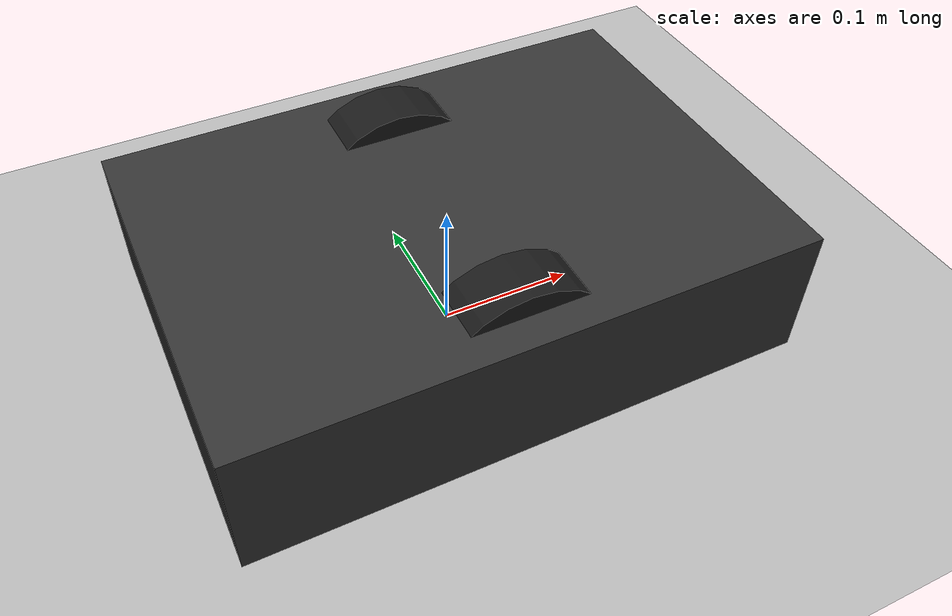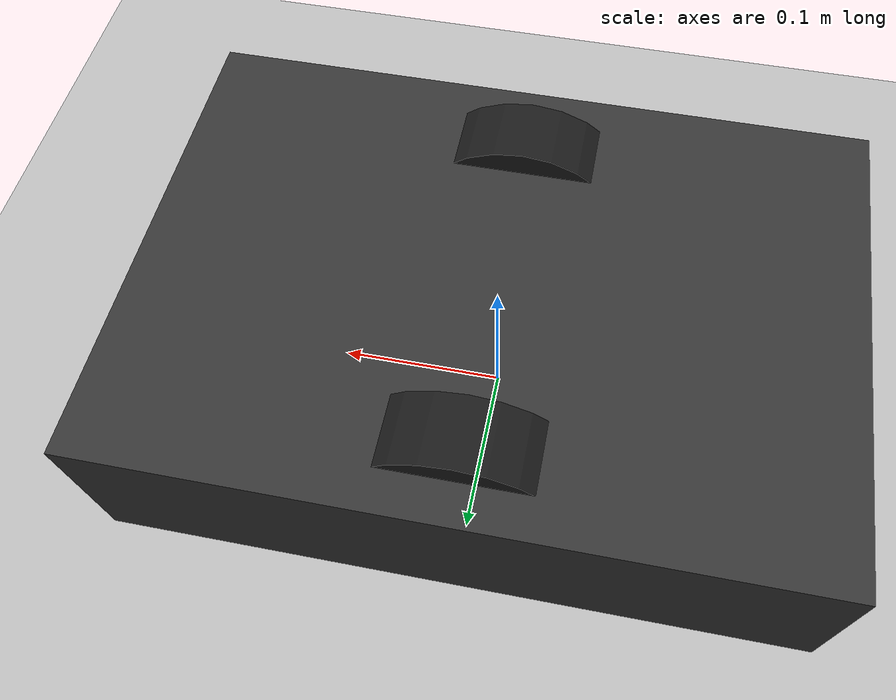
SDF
<?xml version="1.0" ?>
<sdf version="1.9">
  <world name="tank_world">
    <plugin filename="gz-sim-physics-system" name="gz::sim::systems::Physics"/>
    <plugin filename="gz-sim-user-commands-system" name="gz::sim::systems::UserCommands"/>
    <plugin filename="gz-sim-scene-broadcaster-system" name="gz::sim::systems::SceneBroadcaster"/>

    <gravity>0 0 -9.8</gravity>

    <light type="directional" name="sun">
      <cast_shadows>true</cast_shadows>
      <pose>0 0 10 0 0 0</pose>
      <diffuse>0.8 0.8 0.8 1</diffuse>
      <specular>0.2 0.2 0.2 1</specular>
      <direction>-0.5 0.1 -0.9</direction>
    </light>

    <model name="ground_plane">
      <static>true</static>
      <link name="link">
        <collision name="collision">
          <geometry>
            <plane>
              <normal>0 0 1</normal>
              <size>100 100</size>
            </plane>
          </geometry>
        </collision>
        <visual name="visual">
          <geometry>
            <plane>
              <normal>0 0 1</normal>
              <size>100 100</size>
            </plane>
          </geometry>
          <material>
            <ambient>0.7 0.7 0.7 1</ambient>
            <diffuse>0.7 0.7 0.7 1</diffuse>
          </material>
        </visual>
      </link>
    </model>

    <model name="tank_robot">
      <!-- Wheel radius is 0.065 m; place the wheel centers on the ground
           plane and keep the base just above them. -->
      <pose>0 0 0.065 0 0 0</pose>

      <link name="base_link">
        <inertial>
          <mass>8.0</mass>
          <inertia>
            <ixx>0.18</ixx>
            <iyy>0.32</iyy>
            <izz>0.40</izz>
            <ixy>0.0</ixy>
            <ixz>0.0</ixz>
            <iyz>0.0</iyz>
          </inertia>
        </inertial>
        <collision name="base_collision">
          <geometry>
            <box>
              <size>0.40 0.28 0.10</size>
            </box>
          </geometry>
        </collision>
        <visual name="base_visual">
          <geometry>
            <box>
              <size>0.40 0.28 0.10</size>
            </box>
          </geometry>
          <material>
            <ambient>0.1 0.1 0.1 1</ambient>
            <diffuse>0.2 0.2 0.2 1</diffuse>
          </material>
        </visual>
      </link>

      <link name="left_wheel">
        <pose>0 0.097 0 1.57079632679 0 0</pose>
        <inertial>
          <mass>0.7</mass>
          <inertia>
            <ixx>0.002</ixx>
            <iyy>0.002</iyy>
            <izz>0.001</izz>
            <ixy>0.0</ixy>
            <ixz>0.0</ixz>
            <iyz>0.0</iyz>
          </inertia>
        </inertial>
        <collision name="left_wheel_collision">
          <geometry>
            <cylinder>
              <radius>0.065</radius>
              <length>0.04</length>
            </cylinder>
          </geometry>
        </collision>
        <visual name="left_wheel_visual">
          <geometry>
            <cylinder>
              <radius>0.065</radius>
              <length>0.04</length>
            </cylinder>
          </geometry>
          <material>
            <ambient>0.05 0.05 0.05 1</ambient>
            <diffuse>0.1 0.1 0.1 1</diffuse>
          </material>
        </visual>
      </link>

      <link name="right_wheel">
        <pose>0 -0.097 0 1.57079632679 0 0</pose>
        <inertial>
          <mass>0.7</mass>
          <inertia>
            <ixx>0.002</ixx>
            <iyy>0.002</iyy>
            <izz>0.001</izz>
            <ixy>0.0</ixy>
            <ixz>0.0</ixz>
            <iyz>0.0</iyz>
          </inertia>
        </inertial>
        <collision name="right_wheel_collision">
          <geometry>
            <cylinder>
              <radius>0.065</radius>
              <length>0.04</length>
            </cylinder>
          </geometry>
        </collision>
        <visual name="right_wheel_visual">
          <geometry>
            <cylinder>
              <radius>0.065</radius>
              <length>0.04</length>
            </cylinder>
          </geometry>
          <material>
            <ambient>0.05 0.05 0.05 1</ambient>
            <diffuse>0.1 0.1 0.1 1</diffuse>
          </material>
        </visual>
      </link>

      <joint name="left_wheel_joint" type="revolute">
        <parent>base_link</parent>
        <child>left_wheel</child>
        <axis>
          <xyz>0 1 0</xyz>
          <limit>
            <lower>-1e16</lower>
            <upper>1e16</upper>
          </limit>
          <dynamics>
            <damping>0.2</damping>
          </dynamics>
        </axis>
      </joint>

      <joint name="right_wheel_joint" type="revolute">
        <parent>base_link</parent>
        <child>right_wheel</child>
        <axis>
          <xyz>0 1 0</xyz>
          <limit>
            <lower>-1e16</lower>
            <upper>1e16</upper>
          </limit>
          <dynamics>
            <damping>0.2</damping>
          </dynamics>
        </axis>
      </joint>

      <plugin filename="gz-sim-diff-drive-system" name="gz::sim::systems::DiffDrive">
        <left_joint>left_wheel_joint</left_joint>
        <right_joint>right_wheel_joint</right_joint>
        <!-- Keep these equal to the canonical host geometry:
             track_width_m = B = 0.194 m, wheel radius = 0.065 m. -->
        <wheel_separation>0.194</wheel_separation>
        <wheel_radius>0.065</wheel_radius>
        <odom_publish_frequency>30</odom_publish_frequency>
        <topic>/model/tank_robot/cmd_vel</topic>
        <odom_topic>/model/tank_robot/odom</odom_topic>
        <tf_topic>/model/tank_robot/tf</tf_topic>
        <frame_id>odom</frame_id>
        <child_frame_id>base_link</child_frame_id>
      </plugin>
    </model>
  </world>
</sdf>
